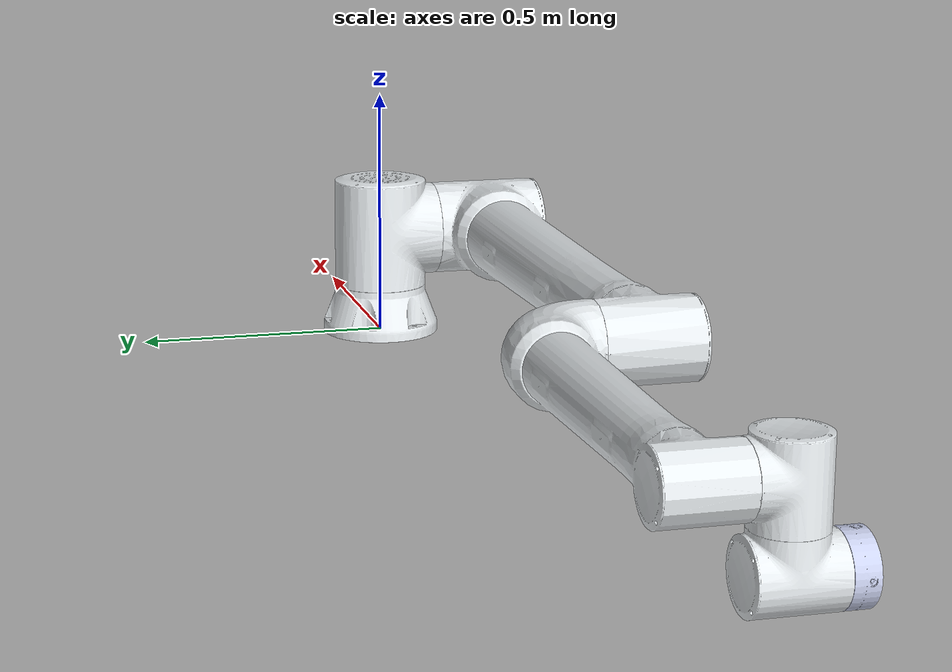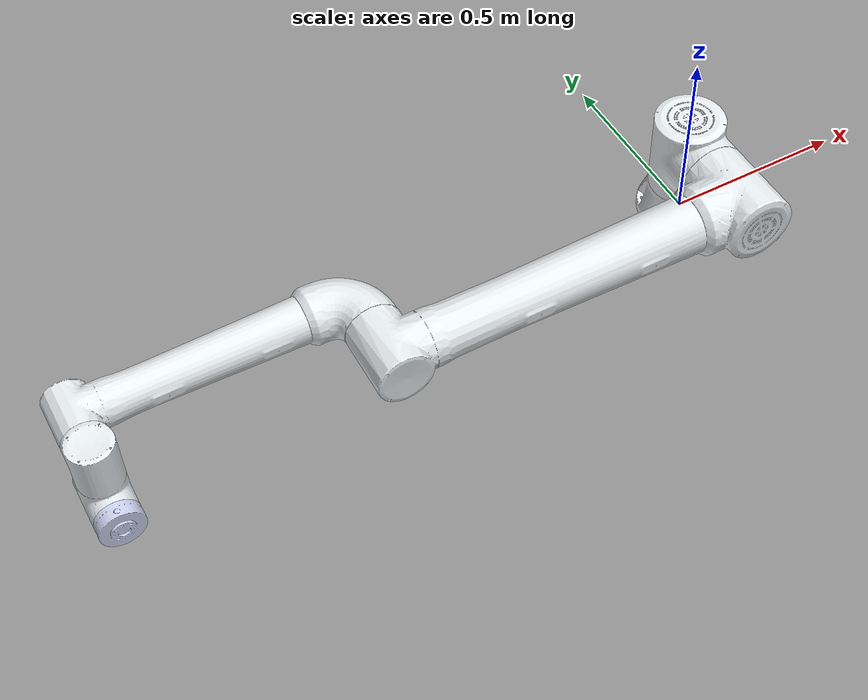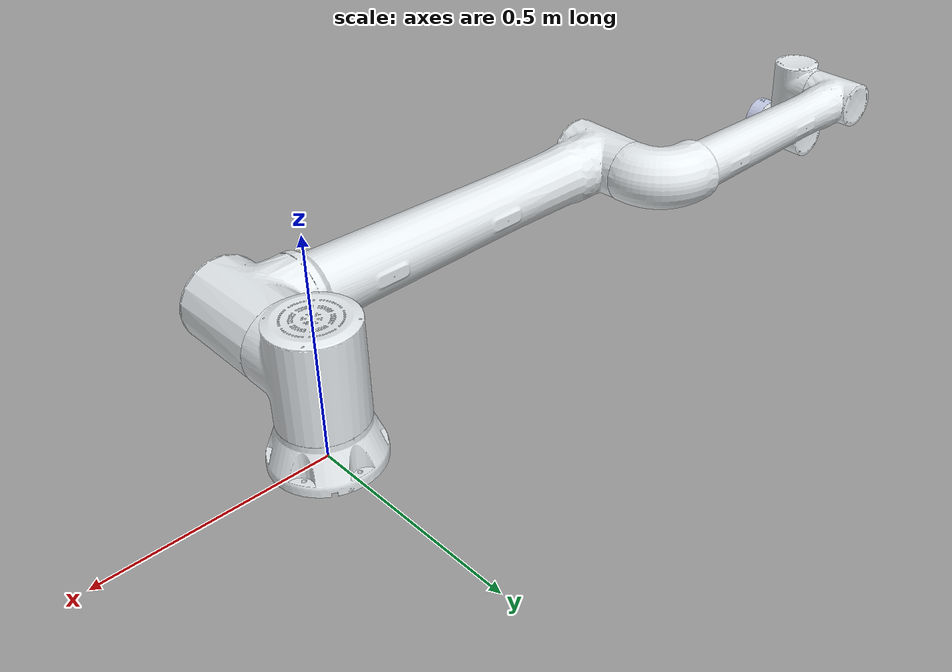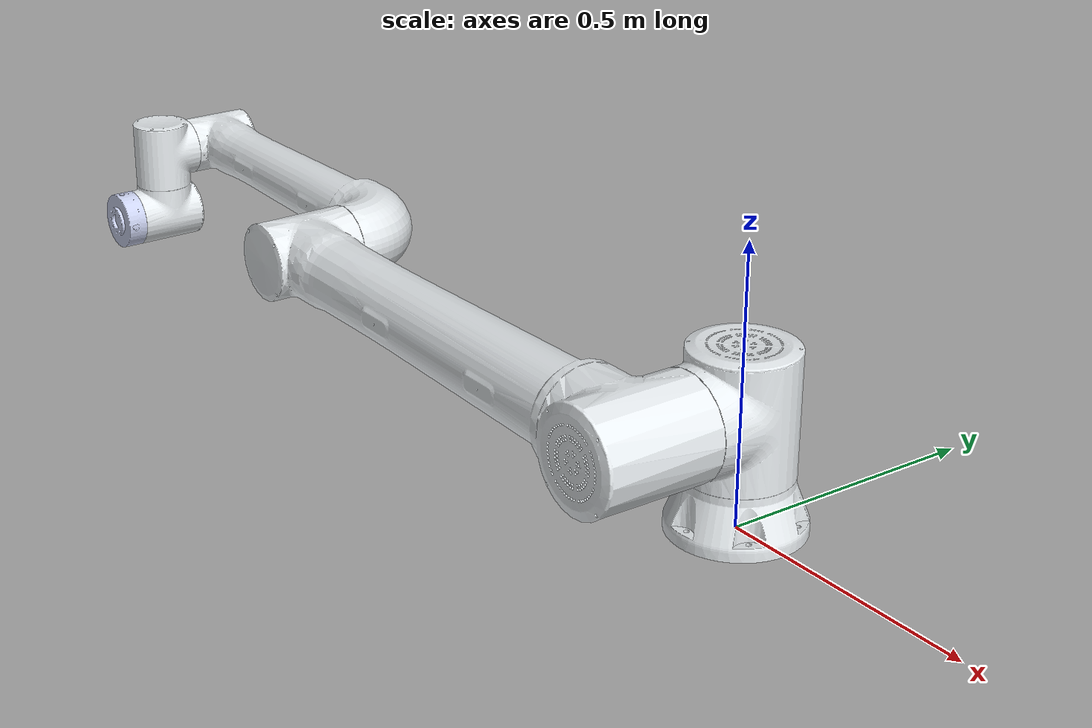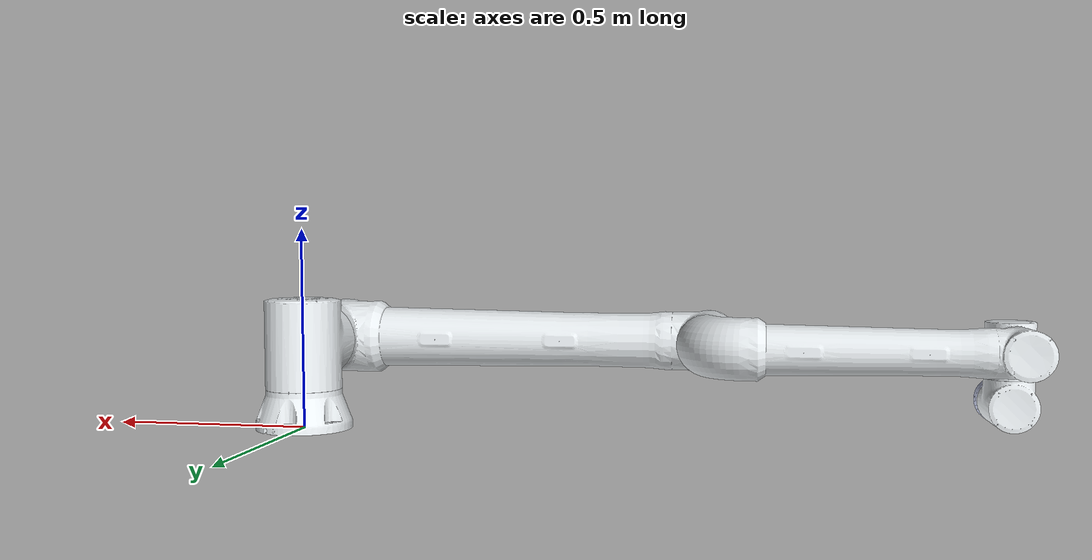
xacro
<?xml version="1.0"?>
<robot xmlns:xacro="http://www.ros.org/wiki/xacro" name="fairino20_v6_robot">
  <xacro:arg name="fairino_file" default="fairino.yaml" />
  <xacro:arg name="hardware_mode" default="real" />

  <!-- Import fairino20_v6_robot urdf file -->
  <xacro:include filename="$(find fairino_description)/urdf/fairino20_v6.urdf" />

  <!-- Import control_xacro -->
  <xacro:include filename="$(find fairino_description)/urdf/fairino.ros2_control.xacro" />

  <xacro:fairino_ros2_control
    name="fairino_ros2_control"
    fairino_file="$(arg fairino_file)"
    hardware_mode="$(arg hardware_mode)"
  />
</robot>

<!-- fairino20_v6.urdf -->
<robot
  name="fairino20_v6_robot">
  <link
    name="base_link">
    <inertial>
      <origin
        xyz="-2.1681E-05 -6.0648E-05 0.043457"
        rpy="0 0 0" />
      <mass
        value="9.2502" />
      <inertia
        ixx="0.034499"
        ixy="1.6641E-05"
        ixz="-7.478E-06"
        iyy="0.034518"
        iyz="-2.0849E-05"
        izz="0.05496" />
    </inertial>
    <visual>
      <origin
        xyz="0 0 0"
        rpy="0 0 0" />
      <geometry>
        <mesh
          filename="package://fairino_description/meshes/fairino20_v6/base_link.STL" />
      </geometry>
      <material
        name="">
        <color
          rgba="0.89804 0.91765 0.92941 1" />
      </material>
    </visual>
    <collision>
      <origin
        xyz="0 0 0"
        rpy="0 0 0" />
      <geometry>
        <mesh
          filename="package://fairino_description/meshes/fairino20_v6/base_link.STL" />
      </geometry>
    </collision>
  </link>
  <link
    name="shoulder_link">
    <inertial>
      <origin
        xyz="-0.00019 -0.03657 0.00568"
        rpy="0 0 0" />
      <mass
        value="20.79" />
      <inertia
        ixx="0.11681303"
        ixy="0.000010684"
        ixz="0.00015198"
        iyy="0.09147711"
        iyz="0.00458985"
        izz="0.11321598" />
    </inertial>
    <visual>
      <origin
        xyz="0 0 0"
        rpy="0 0 0" />
      <geometry>
        <mesh
          filename="package://fairino_description/meshes/fairino20_v6/shoulder_link.STL" />
      </geometry>
      <material
        name="">
        <color
          rgba="0.89804 0.91765 0.92941 1" />
      </material>
    </visual>
    <collision>
      <origin
        xyz="0 0 0"
        rpy="0 0 0" />
      <geometry>
        <mesh
          filename="package://fairino_description/meshes/fairino20_v6/shoulder_link.STL" />
      </geometry>
    </collision>
  </link>
  <joint
    name="j1"
    type="revolute">
    <origin
      xyz="0 0 0"
      rpy="0 0 0" />
    <parent
      link="base_link" />
    <child
      link="shoulder_link" />
    <axis
      xyz="0 0 1" />
    <limit
      lower="-3.0543"
      upper="3.0543"
      effort="150"
      velocity="3.15" />
    <calibration
      rising="0"
      falling="0" />
    <dynamics
      damping="0"
      friction="0" />
    <safety_controller
      soft_upper_limit="3.0543261"
      soft_lower_limit="-3.0543261"
      k_position="100.0"
      k_velocity="40.0" />
  </joint>
  <link
    name="upperarm_link">
    <inertial>
      <origin
        xyz="0.60525 0.00006 0.20294"
        rpy="0 0 0" />
      <mass
        value="42.84" />
      <inertia
        ixx="0.21509702"
        ixy="0.00193218"
        ixz="0.11070934"
        iyy="8.34192406"
        iyz="0.00005317"
        izz="8.29611691" />
    </inertial>
    <visual>
      <origin
        xyz="0 0 0"
        rpy="0 0 0" />
      <geometry>
        <mesh
          filename="package://fairino_description/meshes/fairino20_v6/upperarm_link.STL" />
      </geometry>
      <material
        name="">
        <color
          rgba="0.89804 0.91765 0.92941 1" />
      </material>
    </visual>
    <collision>
      <origin
        xyz="0 0 0"
        rpy="0 0 0" />
      <geometry>
        <mesh
          filename="package://fairino_description/meshes/fairino20_v6/upperarm_link.STL" />
      </geometry>
    </collision>
  </link>
  <joint
    name="j2"
    type="revolute">
    <origin
      xyz="0 0 0.215"
      rpy="1.5708 0 0" />
    <parent
      link="shoulder_link" />
    <child
      link="upperarm_link" />
    <axis
      xyz="0 0 1" />
    <limit
      lower="-4.6251"
      upper="1.4835"
      effort="150"
      velocity="3.15" />
    <calibration
      rising="0"
      falling="0" />
    <dynamics
      damping="0"
      friction="0" />
    <safety_controller
      soft_upper_limit="3.0543261"
      soft_lower_limit="-3.0543261"
      k_position="100.0"
      k_velocity="40.0" />
  </joint>
  <link
    name="forearm_link">
    <inertial>
      <origin
        xyz="0.26284 0.00022 0.04308"
        rpy="0 0 0" />
      <mass
        value="9.88" />
      <inertia
        ixx="0.03036772"
        ixy="0.00023857"
        ixz="0.00627398"
        iyy="0.86016899"
        iyz="0.00000777"
        izz="0.85782697" />
    </inertial>
    <visual>
      <origin
        xyz="0 0 0"
        rpy="0 0 0" />
      <geometry>
        <mesh
          filename="package://fairino_description/meshes/fairino20_v6/forearm_link.STL" />
      </geometry>
      <material
        name="">
        <color
          rgba="0.89804 0.91765 0.92941 1" />
      </material>
    </visual>
    <collision>
      <origin
        xyz="0 0 0"
        rpy="0 0 0" />
      <geometry>
        <mesh
          filename="package://fairino_description/meshes/fairino20_v6/forearm_link.STL" />
      </geometry>
    </collision>
  </link>
  <joint
    name="j3"
    type="revolute">
    <origin
      xyz="-1 0 0"
      rpy="0 0 0" />
    <parent
      link="upperarm_link" />
    <child
      link="forearm_link" />
    <axis
      xyz="0 0 1" />
    <limit
      lower="-2.7925"
      upper="2.7925"
      effort="150"
      velocity="3.15" />
    <calibration
      rising="0"
      falling="0" />
    <dynamics
      damping="0"
      friction="0" />
    <safety_controller
      soft_upper_limit="3.0543261"
      soft_lower_limit="-3.0543261"
      k_position="100.0"
      k_velocity="40.0" />
  </joint>
  <link
    name="wrist1_link">
    <inertial>
      <origin
        xyz="0.00023 -0.00228 0.01842"
        rpy="0 0 0" />
      <mass
        value="4.64" />
      <inertia
        ixx="0.00933772"
        ixy="0.00003325"
        ixz="0.00005007"
        iyy="0.00926897"
        iyz="0.00021949"
        izz="0.00774545" />
    </inertial>
    <visual>
      <origin
        xyz="0 0 0"
        rpy="0 0 0" />
      <geometry>
        <mesh
          filename="package://fairino_description/meshes/fairino20_v6/wrist1_link.STL" />
      </geometry>
      <material
        name="">
        <color
          rgba="0.89804 0.91765 0.92941 1" />
      </material>
    </visual>
    <collision>
      <origin
        xyz="0 0 0"
        rpy="0 0 0" />
      <geometry>
        <mesh
          filename="package://fairino_description/meshes/fairino20_v6/wrist1_link.STL" />
      </geometry>
    </collision>
  </link>
  <joint
    name="j4"
    type="revolute">
    <origin
      xyz="-0.716 0 0"
      rpy="0 0 0" />
    <parent
      link="forearm_link" />
    <child
      link="wrist1_link" />
    <axis
      xyz="0 0 1" />
    <limit
      lower="-4.6251"
      upper="1.4835"
      effort="28"
      velocity="3.2" />
    <calibration
      rising="0"
      falling="0" />
    <dynamics
      damping="0"
      friction="0" />
    <safety_controller
      soft_upper_limit="3.0543261"
      soft_lower_limit="-3.0543261"
      k_position="100.0"
      k_velocity="40.0" />
  </joint>
  <link
    name="wrist2_link">
    <inertial>
      <origin
        xyz="-0.00023 0.00228 0.01842"
        rpy="0 0 0" />
      <mass
        value="4.64" />
      <inertia
        ixx="0.00933772"
        ixy="0.00003325"
        ixz="-0.00005007"
        iyy="0.00926897"
        iyz="-0.00021949"
        izz="0.00774545" />
    </inertial>
    <visual>
      <origin
        xyz="0 0 0"
        rpy="0 0 0" />
      <geometry>
        <mesh
          filename="package://fairino_description/meshes/fairino20_v6/wrist2_link.STL" />
      </geometry>
      <material
        name="">
        <color
          rgba="0.89804 0.91765 0.92941 1" />
      </material>
    </visual>
    <collision>
      <origin
        xyz="0 0 0"
        rpy="0 0 0" />
      <geometry>
        <mesh
          filename="package://fairino_description/meshes/fairino20_v6/wrist2_link.STL" />
      </geometry>
    </collision>
  </link>
  <joint
    name="j5"
    type="revolute">
    <origin
      xyz="0 0 0.16601"
      rpy="1.5708 0 0" />
    <parent
      link="wrist1_link" />
    <child
      link="wrist2_link" />
    <axis
      xyz="0 0 1" />
    <limit
      lower="-3.0543"
      upper="3.0543"
      effort="28"
      velocity="3.2" />
    <calibration
      rising="0"
      falling="0" />
    <dynamics
      damping="0"
      friction="0" />
    <safety_controller
      soft_upper_limit="3.0543261"
      soft_lower_limit="-3.0543261"
      k_position="100.0"
      k_velocity="40.0" />
  </joint>
  <link
    name="wrist3_link">
    <inertial>
      <origin
        xyz="-0.00211 -0.00196 -0.02038"
        rpy="0 0 0" />
      <mass
        value="0.6" />
      <inertia
        ixx="0.00071709"
        ixy="0.00000175"
        ixz="0.00000555"
        iyy="0.00071408"
        iyz="0.00000531"
        izz="0.00127558" />
    </inertial>
    <visual>
      <origin
        xyz="0 0 0"
        rpy="0 0 0" />
      <geometry>
        <mesh
          filename="package://fairino_description/meshes/fairino20_v6/wrist3_link.STL" />
      </geometry>
      <material
        name="">
        <color
          rgba="0.79216 0.81961 0.93333 1" />
      </material>
    </visual>
    <collision>
      <origin
        xyz="0 0 0"
        rpy="0 0 0" />
      <geometry>
        <mesh
          filename="package://fairino_description/meshes/fairino20_v6/wrist3_link.STL" />
      </geometry>
    </collision>
  </link>
  <joint
    name="j6"
    type="revolute">
    <origin
      xyz="0 0 0.138"
      rpy="-1.5708 0 0" />
    <parent
      link="wrist2_link" />
    <child
      link="wrist3_link" />
    <axis
      xyz="0 0 1" />
    <limit
      lower="-3.0543"
      upper="3.0543"
      effort="28"
      velocity="3.2" />
    <calibration
      rising="0"
      falling="0" />
    <dynamics
      damping="0"
      friction="0" />
    <safety_controller
      soft_upper_limit="3.0543261"
      soft_lower_limit="-3.0543261"
      k_position="100.0"
      k_velocity="40.0" />
  </joint>
</robot>
